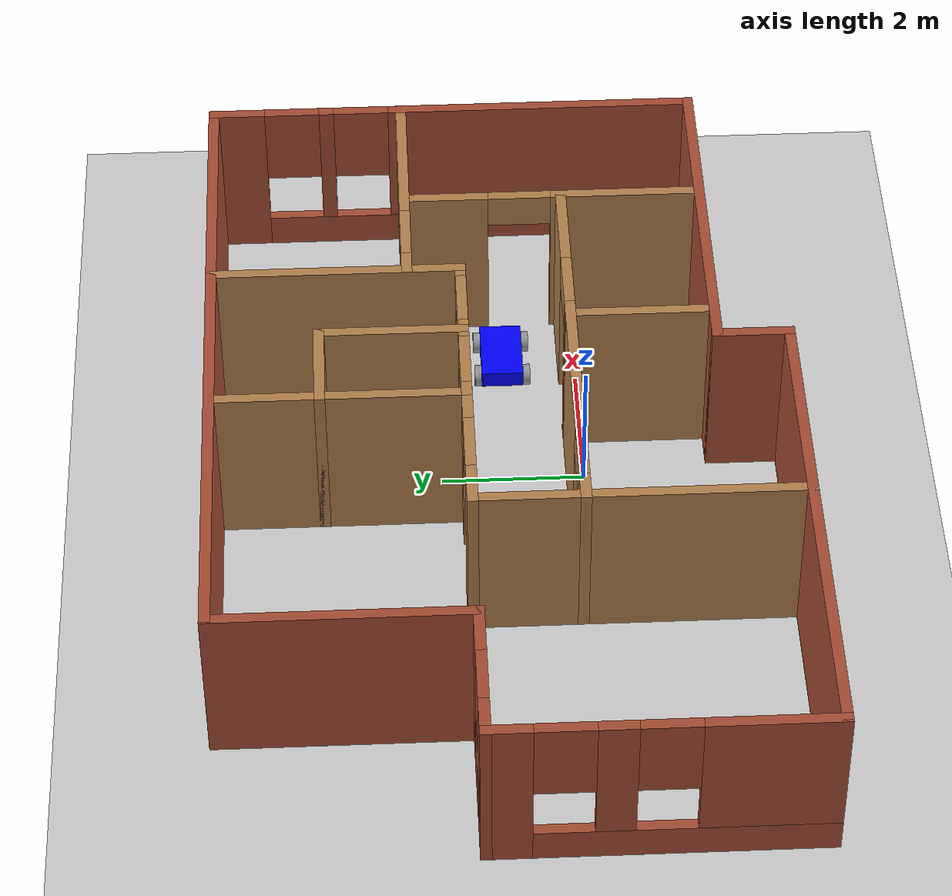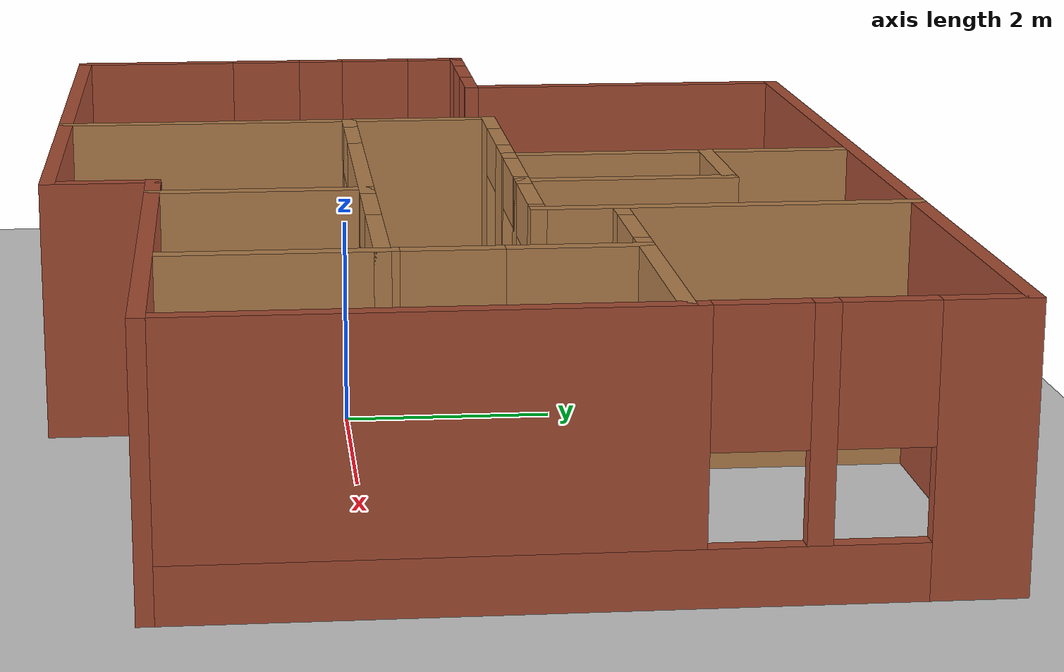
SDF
<sdf version="1.6">
 <world name="default">
  <model name="ground_plane">
   <static>1</static>
   <link name="link">
    <collision name="collision">
     <geometry><plane><normal>0 0 1</normal><size>100 100</size></plane></geometry>
     <surface>
      <contact><collide_bitmask>65535</collide_bitmask></contact>
      <friction><ode><mu>100</mu><mu2>50</mu2></ode></friction>
     </surface>
    </collision>
    <visual name="visual">
     <cast_shadows>0</cast_shadows>
     <geometry><plane><normal>0 0 1</normal><size>100 100</size></plane></geometry>
     <material>
      <script><uri>file://media/materials/scripts/gazebo.material</uri><name>Gazebo/Grey</name></script>
     </material>
    </visual>
   </link>
  </model>
  <model name="Building">
   <pose>-0.72894 1.17252 0 0 -0 0</pose>
   <link name="Wall_53">
    <collision name="Wall_53_Collision">
     <geometry><box><size>3.65 0.15 2.5</size></box></geometry>
     <pose>0 0 1.25 0 -0 0</pose>
    </collision>
    <visual name="Wall_53_Visual">
     <pose>0 0 1.25 0 -0 0</pose>
     <geometry><box><size>3.65 0.15 2.5</size></box></geometry>
     <material>
      <script><uri>file://media/materials/scripts/gazebo.material</uri><name>Gazebo/Bricks</name></script>
      <ambient>0.0666667 0.0941176 0.498039 1</ambient>
     </material>
     <meta><layer>0</layer></meta>
    </visual>
    <pose>-3.99976 2.25 0 0 -0 1.5708</pose>
   </link>
   <link name="Wall_57">
    <pose>-5.99976 -1.75 0 0 0 -1.5708</pose>
    <visual name="Wall_57_Visual_0">
     <pose>-1.98879 0 1.25 0 -0 0</pose>
     <geometry><box><size>0.672428 0.15 2.5</size></box></geometry>
     <material>
      <script><uri>file://media/materials/scripts/gazebo.material</uri><name>Gazebo/Bricks</name></script>
      <ambient>0.0666667 0.0941176 0.498039 1</ambient>
     </material>
     <meta><layer>0</layer></meta>
    </visual>
    <collision name="Wall_57_Collision_0">
     <geometry><box><size>0.672428 0.15 2.5</size></box></geometry>
     <pose>-1.98879 0 1.25 0 -0 0</pose>
    </collision>
    <visual name="Wall_57_Visual_1">
     <pose>0.336214 0 0.25 0 -0 0</pose>
     <geometry><box><size>3.97757 0.15 0.5</size></box></geometry>
     <material>
      <script><uri>file://media/materials/scripts/gazebo.material</uri><name>Gazebo/Bricks</name></script>
      <ambient>0.0666667 0.0941176 0.498039 1</ambient>
     </material>
     <meta><layer>0</layer></meta>
    </visual>
    <collision name="Wall_57_Collision_1">
     <geometry><box><size>3.97757 0.15 0.5</size></box></geometry>
     <pose>0.336214 0 0.25 0 -0 0</pose>
    </collision>
    <visual name="Wall_57_Visual_2">
     <pose>-0.591148 0 1.5 0 -0 0</pose>
     <geometry><box><size>0.522849 0.15 2</size></box></geometry>
     <material>
      <script><uri>file://media/materials/scripts/gazebo.material</uri><name>Gazebo/Bricks</name></script>
      <ambient>0.0666667 0.0941176 0.498039 1</ambient>
     </material>
     <meta><layer>0</layer></meta>
    </visual>
    <collision name="Wall_57_Collision_2">
     <geometry><box><size>0.522849 0.15 2</size></box></geometry>
     <pose>-0.591148 0 1.5 0 -0 0</pose>
    </collision>
    <visual name="Wall_57_Visual_3">
     <pose>1.39764 0 1.5 0 -0 0</pose>
     <geometry><box><size>1.85472 0.15 2</size></box></geometry>
     <material>
      <script><uri>file://media/materials/scripts/gazebo.material</uri><name>Gazebo/Bricks</name></script>
      <ambient>0.0666667 0.0941176 0.498039 1</ambient>
     </material>
     <meta><layer>0</layer></meta>
    </visual>
    <collision name="Wall_57_Collision_3">
     <geometry><box><size>1.85472 0.15 2</size></box></geometry>
     <pose>1.39764 0 1.5 0 -0 0</pose>
    </collision>
    <visual name="Wall_57_Visual_4">
     <pose>-1.25257 0 1.9 0 -0 0</pose>
     <geometry><box><size>0.8 0.15 1.2</size></box></geometry>
     <material>
      <script><uri>file://media/materials/scripts/gazebo.material</uri><name>Gazebo/Bricks</name></script>
      <ambient>0.0666667 0.0941176 0.498039 1</ambient>
     </material>
     <meta><layer>0</layer></meta>
    </visual>
    <collision name="Wall_57_Collision_4">
     <geometry><box><size>0.8 0.15 1.2</size></box></geometry>
     <pose>-1.25257 0 1.9 0 -0 0</pose>
    </collision>
    <visual name="Wall_57_Visual_5">
     <pose>0.070277 0 1.9 0 -0 0</pose>
     <geometry><box><size>0.8 0.15 1.2</size></box></geometry>
     <material>
      <script><uri>file://media/materials/scripts/gazebo.material</uri><name>Gazebo/Bricks</name></script>
      <ambient>0.0666667 0.0941176 0.498039 1</ambient>
     </material>
     <meta><layer>0</layer></meta>
    </visual>
    <collision name="Wall_57_Collision_5">
     <geometry><box><size>0.8 0.15 1.2</size></box></geometry>
     <pose>0.070277 0 1.9 0 -0 0</pose>
    </collision>
   </link>
   <link name="Wall_59">
    <collision name="Wall_59_Collision">
     <geometry><box><size>7.15 0.15 2.5</size></box></geometry>
     <pose>0 0 1.25 0 -0 0</pose>
    </collision>
    <visual name="Wall_59_Visual">
     <pose>0 0 1.25 0 -0 0</pose>
     <geometry><box><size>7.15 0.15 2.5</size></box></geometry>
     <material>
      <script><uri>file://media/materials/scripts/gazebo.material</uri><name>Gazebo/Bricks</name></script>
      <ambient>0.0666667 0.0941176 0.498039 1</ambient>
     </material>
     <meta><layer>0</layer></meta>
    </visual>
    <pose>-2.49976 -4 0 0 -0 0</pose>
   </link>
   <link name="Wall_61">
    <collision name="Wall_61_Collision">
     <geometry><box><size>1.15 0.15 2.5</size></box></geometry>
     <pose>0 0 1.25 0 -0 0</pose>
    </collision>
    <visual name="Wall_61_Visual">
     <pose>0 0 1.25 0 -0 0</pose>
     <geometry><box><size>1.15 0.15 2.5</size></box></geometry>
     <material>
      <script><uri>file://media/materials/scripts/gazebo.material</uri><name>Gazebo/Bricks</name></script>
      <ambient>0.0666667 0.0941176 0.498039 1</ambient>
     </material>
     <meta><layer>0</layer></meta>
    </visual>
    <pose>1.00024 -3.5 0 0 -0 1.5708</pose>
   </link>
   <link name="Wall_63">
    <collision name="Wall_63_Collision">
     <geometry><box><size>5.15 0.15 2.5</size></box></geometry>
     <pose>0 0 1.25 0 -0 0</pose>
    </collision>
    <visual name="Wall_63_Visual">
     <pose>0 0 1.25 0 -0 0</pose>
     <geometry><box><size>5.15 0.15 2.5</size></box></geometry>
     <material>
      <script><uri>file://media/materials/scripts/gazebo.material</uri><name>Gazebo/Bricks</name></script>
      <ambient>0.0666667 0.0941176 0.498039 1</ambient>
     </material>
     <meta><layer>0</layer></meta>
    </visual>
    <pose>3.50024 -3 0 0 -0 0</pose>
   </link>
   <link name="Wall_65">
    <collision name="Wall_65_Collision">
     <geometry><box><size>10.15 0.15 2.5</size></box></geometry>
     <pose>0 0 1.25 0 -0 0</pose>
    </collision>
    <visual name="Wall_65_Visual">
     <pose>0 0 1.25 0 -0 0</pose>
     <geometry><box><size>10.15 0.15 2.5</size></box></geometry>
     <material>
      <script><uri>file://media/materials/scripts/gazebo.material</uri><name>Gazebo/Bricks</name></script>
      <ambient>0.0666667 0.0941176 0.498039 1</ambient>
     </material>
     <meta><layer>0</layer></meta>
    </visual>
    <pose>1.00024 4 0 0 -0 0</pose>
   </link>
   <link name="Wall_68">
    <pose>6.00024 0.575 0 0 0 -1.5708</pose>
    <visual name="Wall_68_Visual_0">
     <pose>-3.09042 0 1.25 0 -0 0</pose>
     <geometry><box><size>0.819158 0.15 2.5</size></box></geometry>
     <material>
      <script><uri>file://media/materials/scripts/gazebo.material</uri><name>Gazebo/Bricks</name></script>
      <ambient>0 0 0.498039 1</ambient>
     </material>
     <meta><layer>0</layer></meta>
    </visual>
    <collision name="Wall_68_Collision_0">
     <geometry><box><size>0.819158 0.15 2.5</size></box></geometry>
     <pose>-3.09042 0 1.25 0 -0 0</pose>
    </collision>
    <visual name="Wall_68_Visual_1">
     <pose>0.409579 0 0.25 0 -0 0</pose>
     <geometry><box><size>6.18084 0.15 0.5</size></box></geometry>
     <material>
      <script><uri>file://media/materials/scripts/gazebo.material</uri><name>Gazebo/Bricks</name></script>
      <ambient>0 0 0.498039 1</ambient>
     </material>
     <meta><layer>0</layer></meta>
    </visual>
    <collision name="Wall_68_Collision_1">
     <geometry><box><size>6.18084 0.15 0.5</size></box></geometry>
     <pose>0.409579 0 0.25 0 -0 0</pose>
    </collision>
    <visual name="Wall_68_Visual_2">
     <pose>-1.77324 0 1.5 0 -0 0</pose>
     <geometry><box><size>0.21521 0.15 2</size></box></geometry>
     <material>
      <script><uri>file://media/materials/scripts/gazebo.material</uri><name>Gazebo/Bricks</name></script>
      <ambient>0 0 0.498039 1</ambient>
     </material>
     <meta><layer>0</layer></meta>
    </visual>
    <collision name="Wall_68_Collision_2">
     <geometry><box><size>0.21521 0.15 2</size></box></geometry>
     <pose>-1.77324 0 1.5 0 -0 0</pose>
    </collision>
    <visual name="Wall_68_Visual_3">
     <pose>1.31718 0 1.5 0 -0 0</pose>
     <geometry><box><size>4.36563 0.15 2</size></box></geometry>
     <material>
      <script><uri>file://media/materials/scripts/gazebo.material</uri><name>Gazebo/Bricks</name></script>
      <ambient>0 0 0.498039 1</ambient>
     </material>
     <meta><layer>0</layer></meta>
    </visual>
    <collision name="Wall_68_Collision_3">
     <geometry><box><size>4.36563 0.15 2</size></box></geometry>
     <pose>1.31718 0 1.5 0 -0 0</pose>
    </collision>
    <visual name="Wall_68_Visual_4">
     <pose>-2.28084 0 1.9 0 -0 0</pose>
     <geometry><box><size>0.8 0.15 1.2</size></box></geometry>
     <material>
      <script><uri>file://media/materials/scripts/gazebo.material</uri><name>Gazebo/Bricks</name></script>
      <ambient>0 0 0.498039 1</ambient>
     </material>
     <meta><layer>0</layer></meta>
    </visual>
    <collision name="Wall_68_Collision_4">
     <geometry><box><size>0.8 0.15 1.2</size></box></geometry>
     <pose>-2.28084 0 1.9 0 -0 0</pose>
    </collision>
    <visual name="Wall_68_Visual_5">
     <pose>-1.26563 0 1.9 0 -0 0</pose>
     <geometry><box><size>0.8 0.15 1.2</size></box></geometry>
     <material>
      <script><uri>file://media/materials/scripts/gazebo.material</uri><name>Gazebo/Bricks</name></script>
      <ambient>0 0 0.498039 1</ambient>
     </material>
     <meta><layer>0</layer></meta>
    </visual>
    <collision name="Wall_68_Collision_5">
     <geometry><box><size>0.8 0.15 1.2</size></box></geometry>
     <pose>-1.26563 0 1.9 0 -0 0</pose>
    </collision>
   </link>
   <link name="Wall_70">
    <collision name="Wall_70_Collision">
     <geometry><box><size>3.65 0.15 2.5</size></box></geometry>
     <pose>0 0 1.25 0 -0 0</pose>
    </collision>
    <visual name="Wall_70_Visual">
     <pose>0 0 1.25 0 -0 0</pose>
     <geometry><box><size>3.65 0.15 2.5</size></box></geometry>
     <material>
      <script><uri>file://media/materials/scripts/gazebo.material</uri><name>Gazebo/Wood</name></script>
      <ambient>0 0 0.498039 1</ambient>
     </material>
     <meta><layer>0</layer></meta>
    </visual>
    <pose>0.000236 2.25 0 0 0 -1.5708</pose>
   </link>
   <link name="Wall_72">
    <pose>-0.999764 0.5 0 0 -0 3.14159</pose>
    <visual name="Wall_72_Visual_0">
     <pose>-0.784599 0 1.25 0 -0 0</pose>
     <geometry><box><size>0.580802 0.15 2.5</size></box></geometry>
     <material>
      <script><uri>file://media/materials/scripts/gazebo.material</uri><name>Gazebo/Wood</name></script>
      <ambient>0 0 0.498039 1</ambient>
     </material>
     <meta><layer>0</layer></meta>
    </visual>
    <collision name="Wall_72_Collision_0">
     <geometry><box><size>0.580802 0.15 2.5</size></box></geometry>
     <pose>-0.784599 0 1.25 0 -0 0</pose>
    </collision>
    <visual name="Wall_72_Visual_1">
     <pose>0.740401 0 1.25 0 -0 0</pose>
     <geometry><box><size>0.669198 0.15 2.5</size></box></geometry>
     <material>
      <script><uri>file://media/materials/scripts/gazebo.material</uri><name>Gazebo/Wood</name></script>
      <ambient>0 0 0.498039 1</ambient>
     </material>
     <meta><layer>0</layer></meta>
    </visual>
    <collision name="Wall_72_Collision_1">
     <geometry><box><size>0.669198 0.15 2.5</size></box></geometry>
     <pose>0.740401 0 1.25 0 -0 0</pose>
    </collision>
    <visual name="Wall_72_Visual_2">
     <pose>-0.044198 0 2.25 0 -0 0</pose>
     <geometry><box><size>0.9 0.15 0.5</size></box></geometry>
     <material>
      <script><uri>file://media/materials/scripts/gazebo.material</uri><name>Gazebo/Wood</name></script>
      <ambient>0 0 0.498039 1</ambient>
     </material>
     <meta><layer>0</layer></meta>
    </visual>
    <collision name="Wall_72_Collision_2">
     <geometry><box><size>0.9 0.15 0.5</size></box></geometry>
     <pose>-0.044198 0 2.25 0 -0 0</pose>
    </collision>
   </link>
   <link name="Wall_76">
    <pose>-4.99976 0.5 0 0 -0 0</pose>
    <visual name="Wall_76_Visual_0">
     <pose>-0.776822 0 1.25 0 -0 0</pose>
     <geometry><box><size>0.597303 0.15 2.5</size></box></geometry>
     <material>
      <script><uri>file://media/materials/scripts/gazebo.material</uri><name>Gazebo/Bricks</name></script>
      <ambient>0.0666667 0.0941176 0.498039 1</ambient>
     </material>
     <meta><layer>0</layer></meta>
    </visual>
    <collision name="Wall_76_Collision_0">
     <geometry><box><size>0.597303 0.15 2.5</size></box></geometry>
     <pose>-0.776822 0 1.25 0 -0 0</pose>
    </collision>
    <visual name="Wall_76_Visual_1">
     <pose>0.298651 0 0.25 0 -0 0</pose>
     <geometry><box><size>1.55364 0.15 0.5</size></box></geometry>
     <material>
      <script><uri>file://media/materials/scripts/gazebo.material</uri><name>Gazebo/Bricks</name></script>
      <ambient>0.0666667 0.0941176 0.498039 1</ambient>
     </material>
     <meta><layer>0</layer></meta>
    </visual>
    <collision name="Wall_76_Collision_1">
     <geometry><box><size>1.55364 0.15 0.5</size></box></geometry>
     <pose>0.298651 0 0.25 0 -0 0</pose>
    </collision>
    <visual name="Wall_76_Visual_2">
     <pose>0.698651 0 1.5 0 -0 0</pose>
     <geometry><box><size>0.753643 0.15 2</size></box></geometry>
     <material>
      <script><uri>file://media/materials/scripts/gazebo.material</uri><name>Gazebo/Bricks</name></script>
      <ambient>0.0666667 0.0941176 0.498039 1</ambient>
     </material>
     <meta><layer>0</layer></meta>
    </visual>
    <collision name="Wall_76_Collision_2">
     <geometry><box><size>0.753643 0.15 2</size></box></geometry>
     <pose>0.698651 0 1.5 0 -0 0</pose>
    </collision>
    <visual name="Wall_76_Visual_3">
     <pose>-0.07817 0 1.9 0 -0 0</pose>
     <geometry><box><size>0.8 0.15 1.2</size></box></geometry>
     <material>
      <script><uri>file://media/materials/scripts/gazebo.material</uri><name>Gazebo/Bricks</name></script>
      <ambient>0.0666667 0.0941176 0.498039 1</ambient>
     </material>
     <meta><layer>0</layer></meta>
    </visual>
    <collision name="Wall_76_Collision_3">
     <geometry><box><size>0.8 0.15 1.2</size></box></geometry>
     <pose>-0.07817 0 1.9 0 -0 0</pose>
    </collision>
   </link>
   <link name="Wall_78">
    <collision name="Wall_78_Collision">
     <geometry><box><size>4.65 0.15 2.5</size></box></geometry>
     <pose>0 0 1.25 0 -0 0</pose>
    </collision>
    <visual name="Wall_78_Visual">
     <pose>0 0 1.25 0 -0 0</pose>
     <geometry><box><size>4.65 0.15 2.5</size></box></geometry>
     <material>
      <script><uri>file://media/materials/scripts/gazebo.material</uri><name>Gazebo/Wood</name></script>
      <ambient>0 0 0.498039 1</ambient>
     </material>
     <meta><layer>0</layer></meta>
    </visual>
    <pose>-1.99976 -1.75 0 0 0 -1.5708</pose>
   </link>
   <link name="Wall_80">
    <collision name="Wall_80_Collision">
     <geometry><box><size>3.65 0.15 2.5</size></box></geometry>
     <pose>0 0 1.25 0 -0 0</pose>
    </collision>
    <visual name="Wall_80_Visual">
     <pose>0 0 1.25 0 -0 0</pose>
     <geometry><box><size>3.65 0.15 2.5</size></box></geometry>
     <material>
      <script><uri>file://media/materials/scripts/gazebo.material</uri><name>Gazebo/Wood</name></script>
      <ambient>0 0 0.498039 1</ambient>
     </material>
     <meta><layer>0</layer></meta>
    </visual>
    <pose>2.50024 2.25 0 0 0 -1.5708</pose>
   </link>
   <link name="Wall_83">
    <pose>1.25024 0.5 0 0 -0 3.14159</pose>
    <visual name="Wall_83_Visual_0">
     <pose>-1.19974 0 1.25 0 -0 0</pose>
     <geometry><box><size>0.25052 0.15 2.5</size></box></geometry>
     <material>
      <script><uri>file://media/materials/scripts/gazebo.material</uri><name>Gazebo/Wood</name></script>
      <ambient>0 0 0.498039 1</ambient>
     </material>
     <meta><layer>0</layer></meta>
    </visual>
    <collision name="Wall_83_Collision_0">
     <geometry><box><size>0.25052 0.15 2.5</size></box></geometry>
     <pose>-1.19974 0 1.25 0 -0 0</pose>
    </collision>
    <visual name="Wall_83_Visual_1">
     <pose>-0.009201 0 1.25 0 -0 0</pose>
     <geometry><box><size>0.330557 0.15 2.5</size></box></geometry>
     <material>
      <script><uri>file://media/materials/scripts/gazebo.material</uri><name>Gazebo/Wood</name></script>
      <ambient>0 0 0.498039 1</ambient>
     </material>
     <meta><layer>0</layer></meta>
    </visual>
    <collision name="Wall_83_Collision_1">
     <geometry><box><size>0.330557 0.15 2.5</size></box></geometry>
     <pose>-0.009201 0 1.25 0 -0 0</pose>
    </collision>
    <visual name="Wall_83_Visual_2">
     <pose>1.19054 0 1.25 0 -0 0</pose>
     <geometry><box><size>0.268922 0.15 2.5</size></box></geometry>
     <material>
      <script><uri>file://media/materials/scripts/gazebo.material</uri><name>Gazebo/Wood</name></script>
      <ambient>0 0 0.498039 1</ambient>
     </material>
     <meta><layer>0</layer></meta>
    </visual>
    <collision name="Wall_83_Collision_2">
     <geometry><box><size>0.268922 0.15 2.5</size></box></geometry>
     <pose>1.19054 0 1.25 0 -0 0</pose>
    </collision>
    <visual name="Wall_83_Visual_3">
     <pose>-0.62448 0 2.25 0 -0 0</pose>
     <geometry><box><size>0.9 0.15 0.5</size></box></geometry>
     <material>
      <script><uri>file://media/materials/scripts/gazebo.material</uri><name>Gazebo/Wood</name></script>
      <ambient>0 0 0.498039 1</ambient>
     </material>
     <meta><layer>0</layer></meta>
    </visual>
    <collision name="Wall_83_Collision_3">
     <geometry><box><size>0.9 0.15 0.5</size></box></geometry>
     <pose>-0.62448 0 2.25 0 -0 0</pose>
    </collision>
    <visual name="Wall_83_Visual_4">
     <pose>0.606078 0 2.25 0 -0 0</pose>
     <geometry><box><size>0.9 0.15 0.5</size></box></geometry>
     <material>
      <script><uri>file://media/materials/scripts/gazebo.material</uri><name>Gazebo/Wood</name></script>
      <ambient>0 0 0.498039 1</ambient>
     </material>
     <meta><layer>0</layer></meta>
    </visual>
    <collision name="Wall_83_Collision_4">
     <geometry><box><size>0.9 0.15 0.5</size></box></geometry>
     <pose>0.606078 0 2.25 0 -0 0</pose>
    </collision>
   </link>
   <link name="Wall_87">
    <pose>4.25024 1.25 0 0 -0 0</pose>
    <visual name="Wall_87_Visual_0">
     <pose>-1.61769 0 1.25 0 -0 0</pose>
     <geometry><box><size>0.414621 0.15 2.5</size></box></geometry>
     <material>
      <script><uri>file://media/materials/scripts/gazebo.material</uri><name>Gazebo/Wood</name></script>
      <ambient>0 0 0.498039 1</ambient>
     </material>
     <meta><layer>0</layer></meta>
    </visual>
    <collision name="Wall_87_Collision_0">
     <geometry><box><size>0.414621 0.15 2.5</size></box></geometry>
     <pose>-1.61769 0 1.25 0 -0 0</pose>
    </collision>
    <visual name="Wall_87_Visual_1">
     <pose>0.65731 0 1.25 0 -0 0</pose>
     <geometry><box><size>2.33538 0.15 2.5</size></box></geometry>
     <material>
      <script><uri>file://media/materials/scripts/gazebo.material</uri><name>Gazebo/Wood</name></script>
      <ambient>0 0 0.498039 1</ambient>
     </material>
     <meta><layer>0</layer></meta>
    </visual>
    <collision name="Wall_87_Collision_1">
     <geometry><box><size>2.33538 0.15 2.5</size></box></geometry>
     <pose>0.65731 0 1.25 0 -0 0</pose>
    </collision>
    <visual name="Wall_87_Visual_2">
     <pose>-0.960379 0 2.25 0 -0 0</pose>
     <geometry><box><size>0.9 0.15 0.5</size></box></geometry>
     <material>
      <script><uri>file://media/materials/scripts/gazebo.material</uri><name>Gazebo/Wood</name></script>
      <ambient>0 0 0.498039 1</ambient>
     </material>
     <meta><layer>0</layer></meta>
    </visual>
    <collision name="Wall_87_Collision_2">
     <geometry><box><size>0.9 0.15 0.5</size></box></geometry>
     <pose>-0.960379 0 2.25 0 -0 0</pose>
    </collision>
   </link>
   <link name="Wall_89">
    <pose>4.00024 -0.8 0 0 0 -1.5708</pose>
    <visual name="Wall_89_Visual_0">
     <pose>-1.48493 0 1.25 0 -0 0</pose>
     <geometry><box><size>1.28014 0.15 2.5</size></box></geometry>
     <material>
      <script><uri>file://media/materials/scripts/gazebo.material</uri><name>Gazebo/Wood</name></script>
      <ambient>0 0 0.498039 1</ambient>
     </material>
     <meta><layer>0</layer></meta>
    </visual>
    <collision name="Wall_89_Collision_0">
     <geometry><box><size>1.28014 0.15 2.5</size></box></geometry>
     <pose>-1.48493 0 1.25 0 -0 0</pose>
    </collision>
    <visual name="Wall_89_Visual_1">
     <pose>1.09007 0 1.25 0 -0 0</pose>
     <geometry><box><size>2.06986 0.15 2.5</size></box></geometry>
     <material>
      <script><uri>file://media/materials/scripts/gazebo.material</uri><name>Gazebo/Wood</name></script>
      <ambient>0 0 0.498039 1</ambient>
     </material>
     <meta><layer>0</layer></meta>
    </visual>
    <collision name="Wall_89_Collision_1">
     <geometry><box><size>2.06986 0.15 2.5</size></box></geometry>
     <pose>1.09007 0 1.25 0 -0 0</pose>
    </collision>
    <visual name="Wall_89_Visual_2">
     <pose>-0.394864 0 2.25 0 -0 0</pose>
     <geometry><box><size>0.9 0.15 0.5</size></box></geometry>
     <material>
      <script><uri>file://media/materials/scripts/gazebo.material</uri><name>Gazebo/Wood</name></script>
      <ambient>0 0 0.498039 1</ambient>
     </material>
     <meta><layer>0</layer></meta>
    </visual>
    <collision name="Wall_89_Collision_2">
     <geometry><box><size>0.9 0.15 0.5</size></box></geometry>
     <pose>-0.394864 0 2.25 0 -0 0</pose>
    </collision>
   </link>
   <link name="Wall_92">
    <pose>1.00024 -1 0 0 -0 3.14159</pose>
    <visual name="Wall_92_Visual_0">
     <pose>-2.35356 0 1.25 0 -0 0</pose>
     <geometry><box><size>1.44288 0.15 2.5</size></box></geometry>
     <material>
      <script><uri>file://media/materials/scripts/gazebo.material</uri><name>Gazebo/Wood</name></script>
      <ambient>0 0 0.498039 1</ambient>
     </material>
     <meta><layer>0</layer></meta>
    </visual>
    <collision name="Wall_92_Collision_0">
     <geometry><box><size>1.44288 0.15 2.5</size></box></geometry>
     <pose>-2.35356 0 1.25 0 -0 0</pose>
    </collision>
    <visual name="Wall_92_Visual_1">
     <pose>0.494515 0 1.25 0 -0 0</pose>
     <geometry><box><size>2.45327 0.15 2.5</size></box></geometry>
     <material>
      <script><uri>file://media/materials/scripts/gazebo.material</uri><name>Gazebo/Wood</name></script>
      <ambient>0 0 0.498039 1</ambient>
     </material>
     <meta><layer>0</layer></meta>
    </visual>
    <collision name="Wall_92_Collision_1">
     <geometry><box><size>2.45327 0.15 2.5</size></box></geometry>
     <pose>0.494515 0 1.25 0 -0 0</pose>
    </collision>
    <visual name="Wall_92_Visual_2">
     <pose>2.84808 0 1.25 0 -0 0</pose>
     <geometry><box><size>0.45385 0.15 2.5</size></box></geometry>
     <material>
      <script><uri>file://media/materials/scripts/gazebo.material</uri><name>Gazebo/Wood</name></script>
      <ambient>0 0 0.498039 1</ambient>
     </material>
     <meta><layer>0</layer></meta>
    </visual>
    <collision name="Wall_92_Collision_2">
     <geometry><box><size>0.45385 0.15 2.5</size></box></geometry>
     <pose>2.84808 0 1.25 0 -0 0</pose>
    </collision>
    <visual name="Wall_92_Visual_3">
     <pose>-1.18212 0 2.25 0 -0 0</pose>
     <geometry><box><size>0.9 0.15 0.5</size></box></geometry>
     <material>
      <script><uri>file://media/materials/scripts/gazebo.material</uri><name>Gazebo/Wood</name></script>
      <ambient>0 0 0.498039 1</ambient>
     </material>
     <meta><layer>0</layer></meta>
    </visual>
    <collision name="Wall_92_Collision_3">
     <geometry><box><size>0.9 0.15 0.5</size></box></geometry>
     <pose>-1.18212 0 2.25 0 -0 0</pose>
    </collision>
    <visual name="Wall_92_Visual_4">
     <pose>2.17115 0 2.25 0 -0 0</pose>
     <geometry><box><size>0.9 0.15 0.5</size></box></geometry>
     <material>
      <script><uri>file://media/materials/scripts/gazebo.material</uri><name>Gazebo/Wood</name></script>
      <ambient>0 0 0.498039 1</ambient>
     </material>
     <meta><layer>0</layer></meta>
    </visual>
    <collision name="Wall_92_Collision_4">
     <geometry><box><size>0.9 0.15 0.5</size></box></geometry>
     <pose>2.17115 0 2.25 0 -0 0</pose>
    </collision>
   </link>
   <link name="Wall_94">
    <collision name="Wall_94_Collision">
     <geometry><box><size>2.15 0.15 2.5</size></box></geometry>
     <pose>0 0 1.25 0 -0 0</pose>
    </collision>
    <visual name="Wall_94_Visual">
     <pose>0 0 1.25 0 -0 0</pose>
     <geometry><box><size>2.15 0.15 2.5</size></box></geometry>
     <material>
      <script><uri>file://media/materials/scripts/gazebo.material</uri><name>Gazebo/Wood</name></script>
      <ambient>0 0 0.498039 1</ambient>
     </material>
     <meta><layer>0</layer></meta>
    </visual>
    <pose>1.50024 -2 0 0 0 -1.5708</pose>
   </link>
   <link name="Wall_96">
    <collision name="Wall_96_Collision">
     <geometry><box><size>1.4 0.15 2.5</size></box></geometry>
     <pose>0 0 1.25 0 -0 0</pose>
    </collision>
    <visual name="Wall_96_Visual">
     <pose>0 0 1.25 0 -0 0</pose>
     <geometry><box><size>1.4 0.15 2.5</size></box></geometry>
     <material>
      <script><uri>file://media/materials/scripts/gazebo.material</uri><name>Gazebo/Wood</name></script>
      <ambient>0 0 0.498039 1</ambient>
     </material>
     <meta><layer>0</layer></meta>
    </visual>
    <pose>0.625236 2.5 0 0 -0 0</pose>
   </link>
   <link name="Wall_97">
    <collision name="Wall_97_Collision">
     <geometry><box><size>2.15 0.15 2.5</size></box></geometry>
     <pose>0 0 1.25 0 -0 0</pose>
    </collision>
    <visual name="Wall_97_Visual">
     <pose>0 0 1.25 0 -0 0</pose>
     <geometry><box><size>2.15 0.15 2.5</size></box></geometry>
     <material>
      <script><uri>file://media/materials/scripts/gazebo.material</uri><name>Gazebo/Wood</name></script>
      <ambient>0 0 0.498039 1</ambient>
     </material>
     <meta><layer>0</layer></meta>
    </visual>
    <pose>1.25024 1.5 0 0 0 -1.5708</pose>
   </link>
   <static>1</static>
  </model>
  <model name="MyRobot_0">
   <link name="link_0">
    <pose>0 0 0.040497 0 -0 0</pose>
    <inertial>
     <mass>1</mass>
     <inertia>
      <ixx>0.166667</ixx>
      <ixy>0</ixy>
      <ixz>0</ixz>
      <iyy>0.166667</iyy>
      <iyz>0</iyz>
      <izz>0.166667</izz>
     </inertia>
    </inertial>
    <visual name="visual">
     <geometry><box><size>1 0.6 0.25</size></box></geometry>
     <material>
      <lighting>1</lighting>
      <script><uri>file://media/materials/scripts/gazebo.material</uri><name>Gazebo/Grey</name></script>
      <shader type="pixel"><normal_map>__default__</normal_map></shader>
      <ambient>0 0 1 1</ambient>
      <diffuse>0 0 1 1</diffuse>
      <specular>0 0 1 1</specular>
      <emissive>0 0 0 1</emissive>
     </material>
    </visual>
    <collision name="collision">
     <geometry><box><size>1 0.6 0.25</size></box></geometry>
     <surface>
      <friction>
       <ode><mu>1</mu><mu2>1</mu2><fdir1>0 0 0</fdir1><slip1>0</slip1><slip2>0</slip2></ode>
       <torsional>
        <coefficient>1</coefficient>
        <patch_radius>0</patch_radius>
        <surface_radius>0</surface_radius>
        <use_patch_radius>1</use_patch_radius>
        <ode><slip>0</slip></ode>
       </torsional>
      </friction>
      <bounce><restitution_coefficient>0</restitution_coefficient><threshold>1e+06</threshold></bounce>
      <contact>
       <collide_without_contact>0</collide_without_contact>
       <collide_without_contact_bitmask>1</collide_without_contact_bitmask>
       <collide_bitmask>1</collide_bitmask>
       <ode>
        <soft_cfm>0</soft_cfm>
        <soft_erp>0.2</soft_erp>
        <kp>1e+13</kp>
        <kd>1</kd>
        <max_vel>0.01</max_vel>
        <min_depth>0</min_depth>
       </ode>
       <bullet>
        <split_impulse>1</split_impulse>
        <split_impulse_penetration_threshold>-0.01</split_impulse_penetration_threshold>
        <soft_cfm>0</soft_cfm>
        <soft_erp>0.2</soft_erp>
        <kp>1e+13</kp>
        <kd>1</kd>
       </bullet>
      </contact>
     </surface>
    </collision>
   </link>
   <link name="link_1">
    <pose>-0.35 -0.350119 -0.009503 1.57 -0 0</pose>
    <inertial>
     <mass>1</mass>
     <inertia><ixx>0.145833</ixx><ixy>0</ixy><ixz>0</ixz><iyy>0.145833</iyy><iyz>0</iyz><izz>0.125</izz></inertia>
    </inertial>
    <visual name="visual">
     <geometry><cylinder><radius>0.15</radius><length>0.1</length></cylinder></geometry>
     <material>
      <lighting>1</lighting>
      <script><uri>file://media/materials/scripts/gazebo.material</uri><name>Gazebo/Grey</name></script>
      <shader type="pixel"><normal_map>__default__</normal_map></shader>
      <ambient>0 0 0 1</ambient>
      <diffuse>0 0 0 1</diffuse>
      <specular>0.01 0.01 0.01 1</specular>
      <emissive>0 0 0 1</emissive>
     </material>
    </visual>
    <collision name="collision">
     <geometry><cylinder><radius>0.15</radius><length>0.1</length></cylinder></geometry>
     <surface>
      <friction>
       <ode><mu>1</mu><mu2>1</mu2><fdir1>0 0 0</fdir1><slip1>0</slip1><slip2>0</slip2></ode>
       <torsional>
        <coefficient>1</coefficient>
        <patch_radius>0</patch_radius>
        <surface_radius>0</surface_radius>
        <use_patch_radius>1</use_patch_radius>
        <ode><slip>0</slip></ode>
       </torsional>
      </friction>
      <bounce><restitution_coefficient>0</restitution_coefficient><threshold>1e+06</threshold></bounce>
      <contact>
       <collide_without_contact>0</collide_without_contact>
       <collide_without_contact_bitmask>1</collide_without_contact_bitmask>
       <collide_bitmask>1</collide_bitmask>
       <ode>
        <soft_cfm>0</soft_cfm>
        <soft_erp>0.2</soft_erp>
        <kp>1e+13</kp>
        <kd>1</kd>
        <max_vel>0.01</max_vel>
        <min_depth>0</min_depth>
       </ode>
       <bullet>
        <split_impulse>1</split_impulse>
        <split_impulse_penetration_threshold>-0.01</split_impulse_penetration_threshold>
        <soft_cfm>0</soft_cfm>
        <soft_erp>0.2</soft_erp>
        <kp>1e+13</kp>
        <kd>1</kd>
       </bullet>
      </contact>
     </surface>
    </collision>
   </link>
   <link name="link_1_clone">
    <pose>0.35 -0.350119 -0.009503 1.57 -0 0</pose>
    <inertial>
     <mass>1</mass>
     <inertia><ixx>0.145833</ixx><ixy>0</ixy><ixz>0</ixz><iyy>0.145833</iyy><iyz>0</iyz><izz>0.125</izz></inertia>
    </inertial>
    <visual name="visual">
     <geometry><cylinder><radius>0.15</radius><length>0.1</length></cylinder></geometry>
     <material>
      <lighting>1</lighting>
      <script><uri>file://media/materials/scripts/gazebo.material</uri><name>Gazebo/Grey</name></script>
      <shader type="pixel"><normal_map>__default__</normal_map></shader>
      <ambient>0 0 0 1</ambient>
      <diffuse>0 0 0 1</diffuse>
      <specular>0.01 0.01 0.01 1</specular>
      <emissive>0 0 0 1</emissive>
     </material>
    </visual>
    <collision name="collision">
     <geometry><cylinder><radius>0.15</radius><length>0.1</length></cylinder></geometry>
     <surface>
      <friction>
       <ode><mu>1</mu><mu2>1</mu2><fdir1>0 0 0</fdir1><slip1>0</slip1><slip2>0</slip2></ode>
       <torsional>
        <coefficient>1</coefficient>
        <patch_radius>0</patch_radius>
        <surface_radius>0</surface_radius>
        <use_patch_radius>1</use_patch_radius>
        <ode><slip>0</slip></ode>
       </torsional>
      </friction>
      <bounce><restitution_coefficient>0</restitution_coefficient><threshold>1e+06</threshold></bounce>
      <contact>
       <collide_without_contact>0</collide_without_contact>
       <collide_without_contact_bitmask>1</collide_without_contact_bitmask>
       <collide_bitmask>1</collide_bitmask>
       <ode>
        <soft_cfm>0</soft_cfm>
        <soft_erp>0.2</soft_erp>
        <kp>1e+13</kp>
        <kd>1</kd>
        <max_vel>0.01</max_vel>
        <min_depth>0</min_depth>
       </ode>
       <bullet>
        <split_impulse>1</split_impulse>
        <split_impulse_penetration_threshold>-0.01</split_impulse_penetration_threshold>
        <soft_cfm>0</soft_cfm>
        <soft_erp>0.2</soft_erp>
        <kp>1e+13</kp>
        <kd>1</kd>
       </bullet>
      </contact>
     </surface>
    </collision>
   </link>
   <link name="link_1_clone_0">
    <pose>0.35 0.350119 -0.011986 1.57 -0 0</pose>
    <inertial>
     <mass>1</mass>
     <inertia><ixx>0.145833</ixx><ixy>0</ixy><ixz>0</ixz><iyy>0.145833</iyy><iyz>0</iyz><izz>0.125</izz></inertia>
    </inertial>
    <visual name="visual">
     <geometry><cylinder><radius>0.15</radius><length>0.1</length></cylinder></geometry>
     <material>
      <lighting>1</lighting>
      <script><uri>file://media/materials/scripts/gazebo.material</uri><name>Gazebo/Grey</name></script>
      <shader type="pixel"><normal_map>__default__</normal_map></shader>
      <ambient>0 0 0 1</ambient>
      <diffuse>0 0 0 1</diffuse>
      <specular>0.01 0.01 0.01 1</specular>
      <emissive>0 0 0 1</emissive>
     </material>
    </visual>
    <collision name="collision">
     <geometry><cylinder><radius>0.15</radius><length>0.1</length></cylinder></geometry>
     <surface>
      <friction>
       <ode><mu>1</mu><mu2>1</mu2><fdir1>0 0 0</fdir1><slip1>0</slip1><slip2>0</slip2></ode>
       <torsional>
        <coefficient>1</coefficient>
        <patch_radius>0</patch_radius>
        <surface_radius>0</surface_radius>
        <use_patch_radius>1</use_patch_radius>
        <ode><slip>0</slip></ode>
       </torsional>
      </friction>
      <bounce><restitution_coefficient>0</restitution_coefficient><threshold>1e+06</threshold></bounce>
      <contact>
       <collide_without_contact>0</collide_without_contact>
       <collide_without_contact_bitmask>1</collide_without_contact_bitmask>
       <collide_bitmask>1</collide_bitmask>
       <ode>
        <soft_cfm>0</soft_cfm>
        <soft_erp>0.2</soft_erp>
        <kp>1e+13</kp>
        <kd>1</kd>
        <max_vel>0.01</max_vel>
        <min_depth>0</min_depth>
       </ode>
       <bullet>
        <split_impulse>1</split_impulse>
        <split_impulse_penetration_threshold>-0.01</split_impulse_penetration_threshold>
        <soft_cfm>0</soft_cfm>
        <soft_erp>0.2</soft_erp>
        <kp>1e+13</kp>
        <kd>1</kd>
       </bullet>
      </contact>
     </surface>
    </collision>
   </link>
   <link name="link_1_clone_1">
    <pose>-0.35 0.350119 -0.009503 1.57 -0 0</pose>
    <inertial>
     <mass>1</mass>
     <inertia><ixx>0.145833</ixx><ixy>0</ixy><ixz>0</ixz><iyy>0.145833</iyy><iyz>0</iyz><izz>0.125</izz></inertia>
    </inertial>
    <visual name="visual">
     <geometry><cylinder><radius>0.15</radius><length>0.1</length></cylinder></geometry>
     <material>
      <lighting>1</lighting>
      <script><uri>file://media/materials/scripts/gazebo.material</uri><name>Gazebo/Grey</name></script>
      <shader type="pixel"><normal_map>__default__</normal_map></shader>
      <ambient>0 0 0 1</ambient>
      <diffuse>0 0 0 1</diffuse>
      <specular>0.01 0.01 0.01 1</specular>
      <emissive>0 0 0 1</emissive>
     </material>
    </visual>
    <collision name="collision">
     <geometry><cylinder><radius>0.15</radius><length>0.1</length></cylinder></geometry>
     <surface>
      <friction>
       <ode><mu>1</mu><mu2>1</mu2><fdir1>0 0 0</fdir1><slip1>0</slip1><slip2>0</slip2></ode>
       <torsional>
        <coefficient>1</coefficient>
        <patch_radius>0</patch_radius>
        <surface_radius>0</surface_radius>
        <use_patch_radius>1</use_patch_radius>
        <ode><slip>0</slip></ode>
       </torsional>
      </friction>
      <bounce><restitution_coefficient>0</restitution_coefficient><threshold>1e+06</threshold></bounce>
      <contact>
       <collide_without_contact>0</collide_without_contact>
       <collide_without_contact_bitmask>1</collide_without_contact_bitmask>
       <collide_bitmask>1</collide_bitmask>
       <ode>
        <soft_cfm>0</soft_cfm>
        <soft_erp>0.2</soft_erp>
        <kp>1e+13</kp>
        <kd>1</kd>
        <max_vel>0.01</max_vel>
        <min_depth>0</min_depth>
       </ode>
       <bullet>
        <split_impulse>1</split_impulse>
        <split_impulse_penetration_threshold>-0.01</split_impulse_penetration_threshold>
        <soft_cfm>0</soft_cfm>
        <soft_erp>0.2</soft_erp>
        <kp>1e+13</kp>
        <kd>1</kd>
       </bullet>
      </contact>
     </surface>
    </collision>
   </link>
   <joint name="link_0_JOINT_0" type="revolute">
    <parent>link_0</parent>
    <child>link_1_clone</child>
    <axis>
     <xyz>0 0 1</xyz>
     <use_parent_model_frame>0</use_parent_model_frame>
     <limit>
      <lower>-1.79769e+308</lower>
      <upper>1.79769e+308</upper>
      <effort>-1</effort>
      <velocity>-1</velocity>
     </limit>
     <dynamics>
      <spring_reference>0</spring_reference>
      <spring_stiffness>0</spring_stiffness>
      <damping>0</damping>
     </dynamics>
    </axis>
    <physics>
     <ode><limit><cfm>0</cfm><erp>0.2</erp></limit><suspension><cfm>0</cfm><erp>0.2</erp></suspension></ode>
    </physics>
   </joint>
   <joint name="link_0_JOINT_1" type="revolute">
    <parent>link_0</parent>
    <child>link_1_clone_0</child>
    <axis>
     <xyz>0 0 1</xyz>
     <use_parent_model_frame>0</use_parent_model_frame>
     <limit>
      <lower>-1.79769e+308</lower>
      <upper>1.79769e+308</upper>
      <effort>-1</effort>
      <velocity>-1</velocity>
     </limit>
     <dynamics>
      <spring_reference>0</spring_reference>
      <spring_stiffness>0</spring_stiffness>
      <damping>0</damping>
     </dynamics>
    </axis>
    <physics>
     <ode><limit><cfm>0</cfm><erp>0.2</erp></limit><suspension><cfm>0</cfm><erp>0.2</erp></suspension></ode>
    </physics>
   </joint>
   <joint name="link_0_JOINT_2" type="revolute">
    <parent>link_0</parent>
    <child>link_1_clone_1</child>
    <axis>
     <xyz>0 0 1</xyz>
     <use_parent_model_frame>0</use_parent_model_frame>
     <limit>
      <lower>-1.79769e+308</lower>
      <upper>1.79769e+308</upper>
      <effort>-1</effort>
      <velocity>-1</velocity>
     </limit>
     <dynamics>
      <spring_reference>0</spring_reference>
      <spring_stiffness>0</spring_stiffness>
      <damping>0</damping>
     </dynamics>
    </axis>
    <physics>
     <ode><limit><cfm>0</cfm><erp>0.2</erp></limit><suspension><cfm>0</cfm><erp>0.2</erp></suspension></ode>
    </physics>
   </joint>
   <joint name="link_0_JOINT_3" type="revolute">
    <parent>link_0</parent>
    <child>link_1</child>
    <axis>
     <xyz>0 0 1</xyz>
     <use_parent_model_frame>0</use_parent_model_frame>
     <limit>
      <lower>-1.79769e+308</lower>
      <upper>1.79769e+308</upper>
      <effort>-1</effort>
      <velocity>-1</velocity>
     </limit>
     <dynamics>
      <spring_reference>0</spring_reference>
      <spring_stiffness>0</spring_stiffness>
      <damping>0</damping>
     </dynamics>
    </axis>
    <physics>
     <ode><limit><cfm>0</cfm><erp>0.2</erp></limit><suspension><cfm>0</cfm><erp>0.2</erp></suspension></ode>
    </physics>
   </joint>
   <static>0</static>
   <pose>2.33794 1.06671 0.160745 0.000799 -0.002747 -0.003264</pose>
  </model>
  <model name="my_ball">
   <link name="link_0">
    <inertial>
     <mass>1</mass>
     <inertia><ixx>0.1</ixx><ixy>0</ixy><ixz>0</ixz><iyy>0.1</iyy><iyz>0</iyz><izz>0.1</izz></inertia>
    </inertial>
    <visual name="visual">
     <geometry><sphere><radius>0.1</radius></sphere></geometry>
     <material>
      <lighting>1</lighting>
      <script><uri>file://media/materials/scripts/gazebo.material</uri><name>Gazebo/Grey</name></script>
      <shader type="pixel"><normal_map>__default__</normal_map></shader>
      <ambient>1 1 1 1</ambient>
      <diffuse>1 1 1 1</diffuse>
      <specular>1 1 1 1</specular>
      <emissive>1 1 1 1</emissive>
     </material>
    </visual>
    <collision name="collision">
     <geometry><sphere><radius>0.1</radius></sphere></geometry>
     <surface>
      <friction>
       <ode><mu>1</mu><mu2>1</mu2><fdir1>0 0 0</fdir1><slip1>0</slip1><slip2>0</slip2></ode>
       <torsional>
        <coefficient>1</coefficient>
        <patch_radius>0</patch_radius>
        <surface_radius>0</surface_radius>
        <use_patch_radius>1</use_patch_radius>
        <ode><slip>0</slip></ode>
       </torsional>
      </friction>
      <bounce><restitution_coefficient>0</restitution_coefficient><threshold>1e+06</threshold></bounce>
      <contact>
       <collide_without_contact>0</collide_without_contact>
       <collide_without_contact_bitmask>1</collide_without_contact_bitmask>
       <collide_bitmask>1</collide_bitmask>
       <ode>
        <soft_cfm>0</soft_cfm>
        <soft_erp>0.2</soft_erp>
        <kp>1e+13</kp>
        <kd>1</kd>
        <max_vel>0.01</max_vel>
        <min_depth>0</min_depth>
       </ode>
       <bullet>
        <split_impulse>1</split_impulse>
        <split_impulse_penetration_threshold>-0.01</split_impulse_penetration_threshold>
        <soft_cfm>0</soft_cfm>
        <soft_erp>0.2</soft_erp>
        <kp>1e+13</kp>
        <kd>1</kd>
       </bullet>
      </contact>
     </surface>
    </collision>
   </link>
   <static>0</static>
   <pose>-0.494294 -0.291668 0.1 0 -0 0</pose>
  </model>
 </world>
</sdf>
